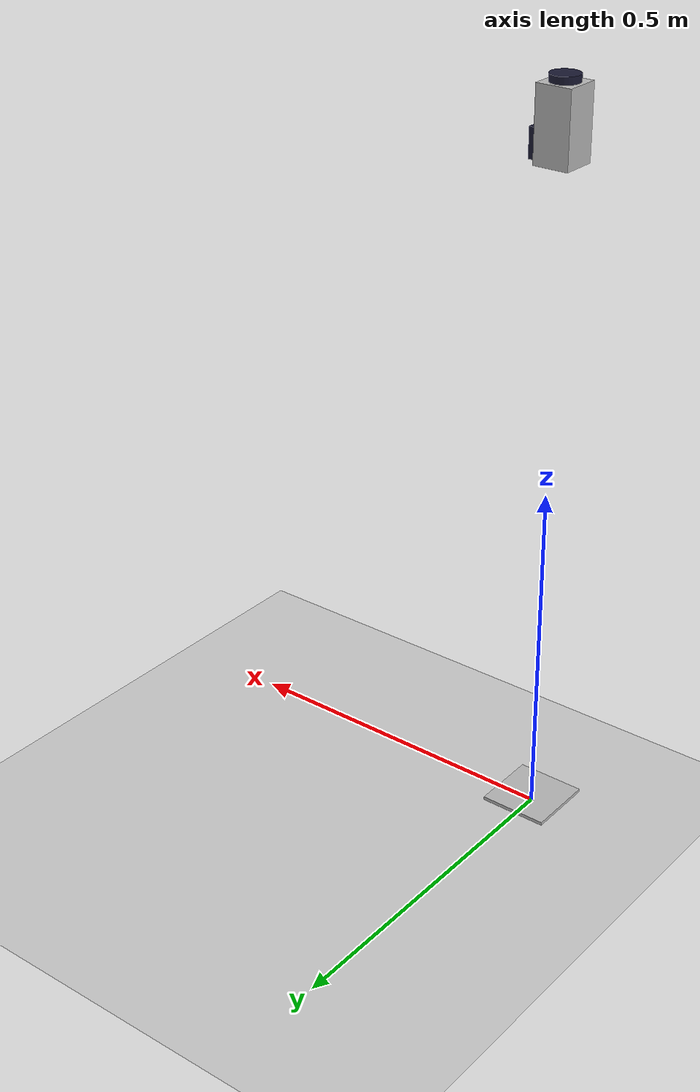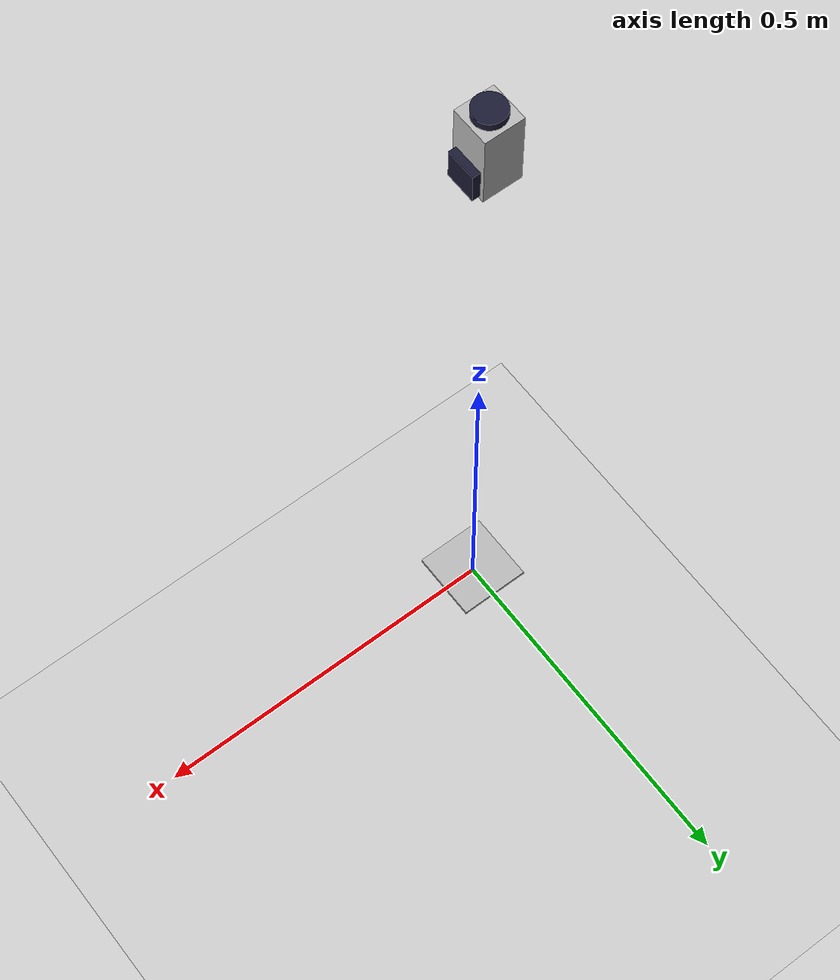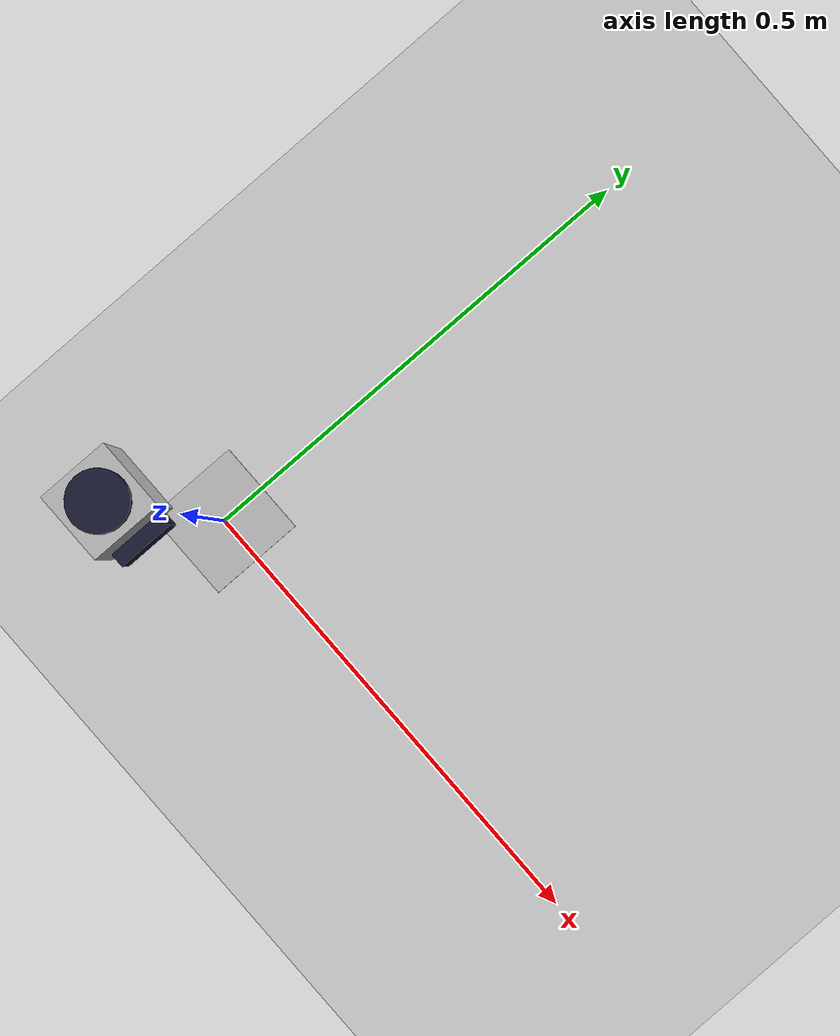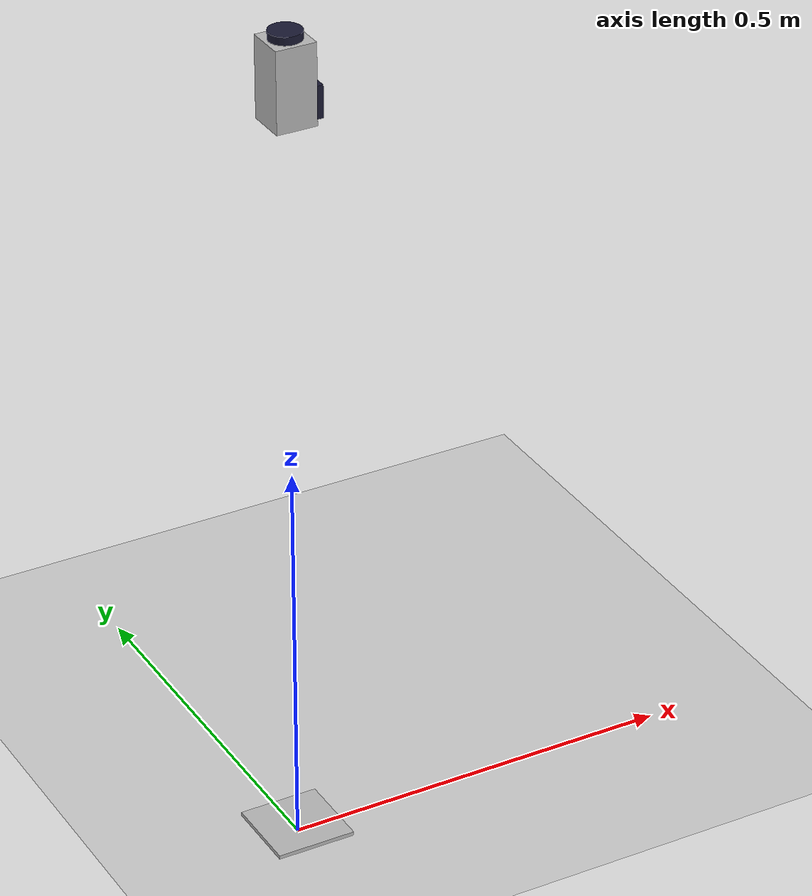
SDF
<?xml version="1.0" ?>
<!--
  Demo world with widgets displaying images coming from a bounding box camera sensor.
-->
<sdf version="1.6">
  <world name="Basic_Cam_World">
    <gravity>0 0 0</gravity>
    <plugin
      filename="gz-sim-physics-system"
      name="gz::sim::systems::Physics">
    </plugin>
    <plugin
      filename="gz-sim-user-commands-system"
      name="gz::sim::systems::UserCommands">
    </plugin>
    <plugin
      filename="gz-sim-scene-broadcaster-system"
      name="gz::sim::systems::SceneBroadcaster">
    </plugin>
    <plugin
      filename="gz-sim-sensors-system"
      name="gz::sim::systems::Sensors">
      <render_engine>ogre2</render_engine>
    </plugin>

    <gui fullscreen="0">
	</gui>

    <light type="directional" name="sun">
      <cast_shadows>true</cast_shadows>
      <pose>0 0 10 0 0 0</pose>
      <diffuse>0.8 0.8 0.8 1</diffuse>
      <specular>0.8 0.8 0.8 1</specular>
      <attenuation>
        <range>1000</range>
        <constant>0.9</constant>
        <linear>0.01</linear>
        <quadratic>0.001</quadratic>
      </attenuation>
      <direction>-0.5 0.1 -0.9</direction>
    </light>

    <model name="ground_plane">
      <static>true</static>
      <link name="link">
        <collision name="collision">
          <geometry>
            <plane>
              <normal>0 0 1</normal>
              <size>100 100</size>
            </plane>
          </geometry>
        </collision>
        <visual name="visual">
          <geometry>
            <plane>
              <normal>0 0 1</normal>
              <size>100 100</size>
            </plane>
          </geometry>
          <material>
            <ambient>0.8 0.8 0.8 1</ambient>
            <diffuse>0.8 0.8 0.8 1</diffuse>
            <specular>0.8 0.8 0.8 1</specular>
          </material>
        </visual>
      </link>
    </model>

	<include>
              <uri>../../Markers/DICT_4X4_50_s100/DICT_4X4_50_s100_id0/DICT_4X4_50_s100_id0.sdf</uri>
	</include>

    	<include>
		<pose>0 0 1 0 0 0</pose>
		<uri>../../Cameras/Cam_90deg_temp.sdf</uri>
       	</include>

  </world>
</sdf>

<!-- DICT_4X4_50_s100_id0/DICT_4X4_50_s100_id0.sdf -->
<sdf version="1.5">
        <model name="DICT_4X4_50_s100_id0">
              <link name="Main">

              	<inertial>
                <mass>1</mass>
                <pose>0 0 0 0 0 0</pose>
                <inertia>
                    <ixx>1</ixx>
                    <iyy>1</iyy>
                    <izz>1</izz>
                </inertia>
                </inertial>

                <pose>0 0 0 0 0 -1.570796327</pose>
                    <visual name="DICT_4X4_50_s100_id0_Visual">
                        <pose>0 0 0.01 0 0 0</pose>
                        <geometry>
                            <mesh>
                                <scale>1 1 1</scale>
                                <uri>DICT_4X4_50_s100_id0.obj</uri>
                            </mesh>
                        </geometry>
                    </visual>
                    <gravity>1</gravity>
                    <velocity_decay/>
                    <self_collide>0</self_collide>
              </link>

          <plugin
                filename="Position_Control"
                name="gz::sim::v7::systems::PositionController">
                <timestep_precision>10</timestep_precision>
                <xyz_offset> 0 0 0</xyz_offset>
                <rpy_offset> 0 0 0</rpy_offset>
            </plugin>

          </model></sdf>

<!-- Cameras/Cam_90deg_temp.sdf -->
<sdf version="1.5">
        <model name="camera">
            <pose>0 0 0 0 0 0</pose>

            <link name="Main">
                <pose>0 0 0 0 -1.570796327 0</pose>
                <inertial>
                    <mass>0.8</mass>
                    <inertia>
                        <ixx>0.8</ixx>
                        <iyy>0.8</iyy>
                        <izz>0.8</izz>
                    </inertia>
                </inertial>
                <collision name="collision">
                <geometry>
                    <box>
                    <size>0.1 0.05 0.05</size>
                    </box>
                </geometry>
                </collision>
                <visual name="visual">
                <geometry>
                    <box>
                    <size>0.1 0.05 0.05</size>
                    </box>
                </geometry>
                </visual>

                <sensor name="camera_forward" type="camera">
                <pose>0 0 0 0 0 0</pose>
                <topic>camera_forward</topic>
                <camera>
                    <box_type>full_2d</box_type>
                    <horizontal_fov>1.047</horizontal_fov>
                    <image>
                    <width>800</width>
                    <height>600</height>
                    </image>
                    <clip>
                    <near>0.1</near>
                    <far>10</far>
                    </clip>
                    <save enabled="true">
                    <path>../tmp_files/cam_forward</path>
                    </save>
                    <distortion>
                    <k1>1</k1>
                    <k2>10</k2>
                    <k3>5</k3>
                    <p1>10</p1>
                    <p2>10</p2>
                    <center>0.5 0.5</center>
                    </distortion>
                    <lens>
                    <type>stereographic</type>
                    <scale_to_hfov>true</scale_to_hfov>
                    <cutoff_angle>1.5707963267948966</cutoff_angle>
                    <env_texture_size>256</env_texture_size>
                    </lens>
                </camera>
                <always_on>1</always_on>
                <update_rate>24</update_rate>
                <visualize>true</visualize>

                <plugin
                    filename="gz-sim-camera-video-recorder-system"
                    name="gz::sim::systems::CameraVideoRecorder">
                    <service>camera_forward</service>
                    <use_sim_time>true</use_sim_time>
                    <fps>24</fps>
                </plugin>

                </sensor>

                <sensor name="camera_down" type="camera">
                <pose>0 0 0 0 1.5708 0</pose>
                <topic>camera_down</topic>
                <camera>
                    <box_type>full_2d</box_type>
                    <horizontal_fov>1.047</horizontal_fov>
                    <image>
                    <width>800</width>
                    <height>600</height>
                    </image>
                    <clip>
                    <near>0.1</near>
                    <far>10</far>
                    </clip>
                    <save enabled="true">
                    <path>../tmp_files/cam_down</path>
                    </save>
                    <distortion>
                    <k1>1</k1>
                    <k2>10</k2>
                    <k3>5</k3>
                    <p1>10</p1>
                    <p2>10</p2>
                    <center>0.5 0.5</center>
                    </distortion>
                    <lens>
                    <type>stereographic</type>
                    <scale_to_hfov>true</scale_to_hfov>
                    <cutoff_angle>1.5707963267948966</cutoff_angle>
                    <env_texture_size>256</env_texture_size>
                    </lens>
                </camera>
                <always_on>1</always_on>
                <update_rate>24</update_rate>
                <visualize>true</visualize>

                <plugin
                    filename="gz-sim-camera-video-recorder-system"
                    name="gz::sim::systems::CameraVideoRecorder">
                    <service>camera_down</service>
                    <use_sim_time>true</use_sim_time>
                    <fps>24</fps>
                </plugin>

                </sensor>

            </link>

            <link name="Lens_Forward">

                <!-- Vertically offset the top cylinder by the length of the bottom
                    cylinder and half the length of this cylinder. -->
                <pose>0 0 0.055 0 0 0</pose>

                <inertial>
                    <mass>0.1</mass>
                    <pose>0 0 -0.055 0 0 0</pose>
                    <inertia>
                        <ixx>0.1</ixx>
                        <iyy>0.1</iyy>
                        <izz>0.1</izz>
                    </inertia>
                </inertial>

                <collision name="top_collision">
                <geometry>
                    <cylinder>
                    <!-- Radius and length provided by Velodyne -->
                    <radius>0.02</radius>
                    <length>0.01</length>
                    </cylinder>
                </geometry>
                </collision>

                <!-- The visual is mostly a copy of the collision -->
                <visual name="top_visual">
                <geometry>
                    <cylinder>
                    <radius>0.02</radius>
                    <length>0.01</length>
                    </cylinder>
                </geometry>

                <material> <!-- Wheel material -->
                    <ambient>0.1 0.1 0.1 1</ambient>
                    <diffuse>0.1 0.1 0.2 1</diffuse>
                    <specular>0 0 0 0</specular>
                    <emissive>0 0 0 1</emissive>
                </material> <!-- End wheel material -->

                </visual>

            </link>

            <link name="Lens_Down">

                <!-- Vertically offset the top cylinder by the length of the bottom
                    cylinder and half the length of this cylinder. -->
                <pose>0.03 0 -0.025 0 0 0</pose>

                <inertial>
                    <mass>0.1</mass>
                    <pose>-0.03 0 0.025 0 0 0</pose>
                    <inertia>
                        <ixx>0.1</ixx>
                        <iyy>0.1</iyy>
                        <izz>0.1</izz>
                    </inertia>
                </inertial>

                <collision name="top_collision">
                <geometry>
                    <box>
                    <size>0.01 0.04 0.04</size>
                    </box>
                </geometry>
                </collision>

                <!-- The visual is mostly a copy of the collision -->
                <visual name="top_visual">
                <geometry>
                    <box>
                    <size>0.01 0.04 0.04</size>
                    </box>
                </geometry>

                <material> <!-- Wheel material -->
                    <ambient>0.1 0.1 0.1 1</ambient>
                    <diffuse>0.1 0.1 0.2 1</diffuse>
                    <specular>0 0 0 0</specular>
                    <emissive>0 0 0 1</emissive>
                </material> <!-- End wheel material -->

                </visual>

            </link>

            <joint type="fixed" name="main_and_lens_forward">
                <pose>0 0 0.055 0 0 0</pose>
                <parent>Main</parent>
                <child>Lens_Forward</child>
            </joint>

            <joint type="fixed" name="main_and_top_right">
                <pose>0.03 0 -0.025 0 0 0</pose>
                <parent>Main</parent>
                <child>Lens_Down</child>
            </joint>

            <plugin
                filename="Position_Control"
                name="gz::sim::v7::systems::PositionController">
                <timestep_precision>10</timestep_precision>
                <xyz_offset> 0 0 0</xyz_offset>
                <rpy_offset> 0 0 0</rpy_offset>
            </plugin>

            <plugin
                filename="Pose_To_File"
                name="gz::sim::v7::systems::PoseToFile">
            </plugin>
        </model>
    </sdf>
